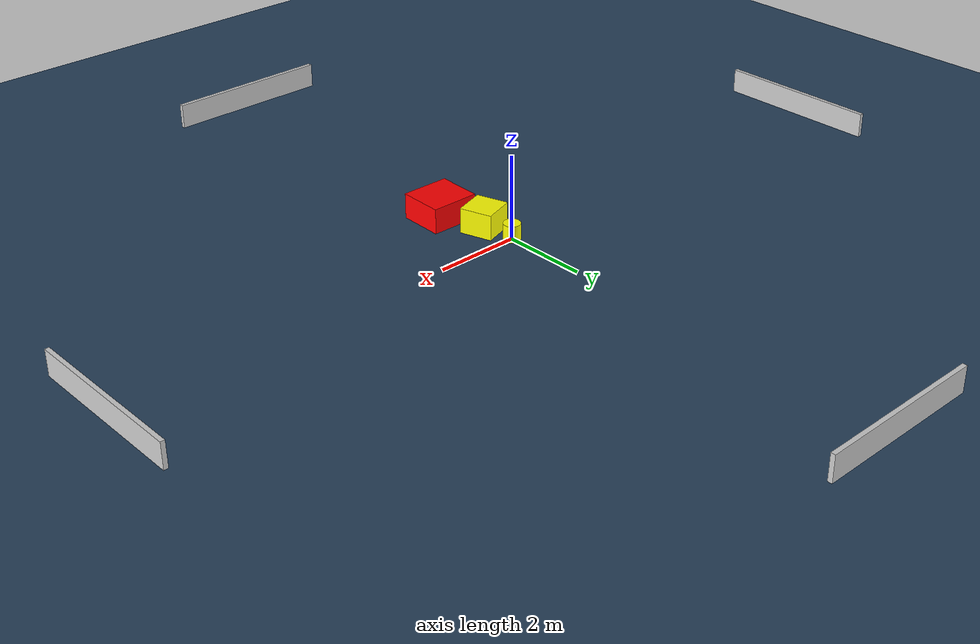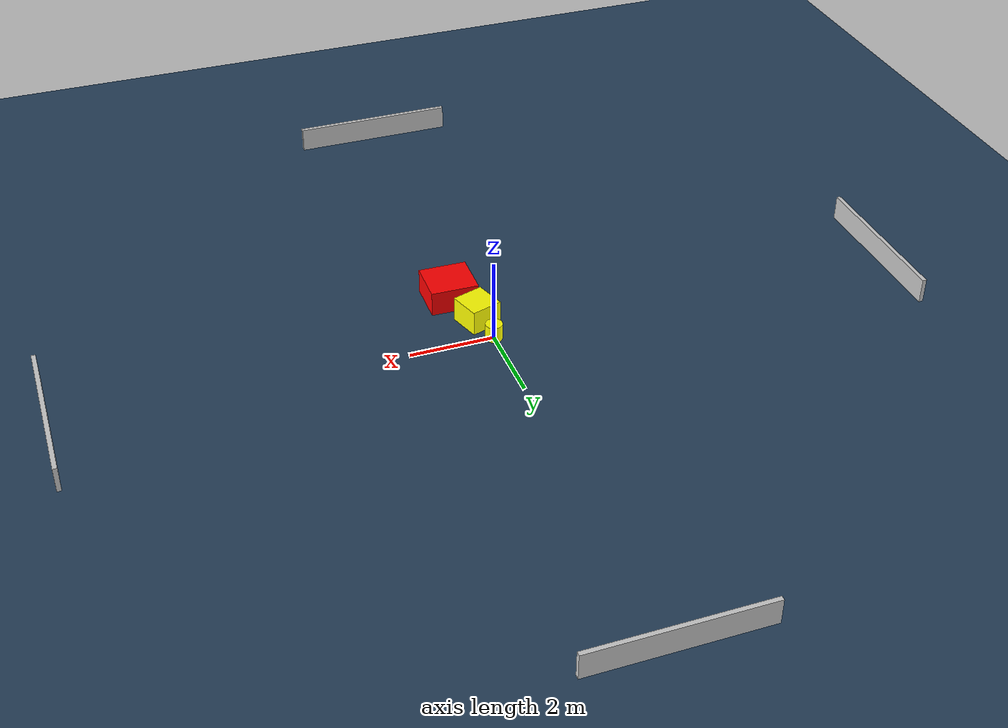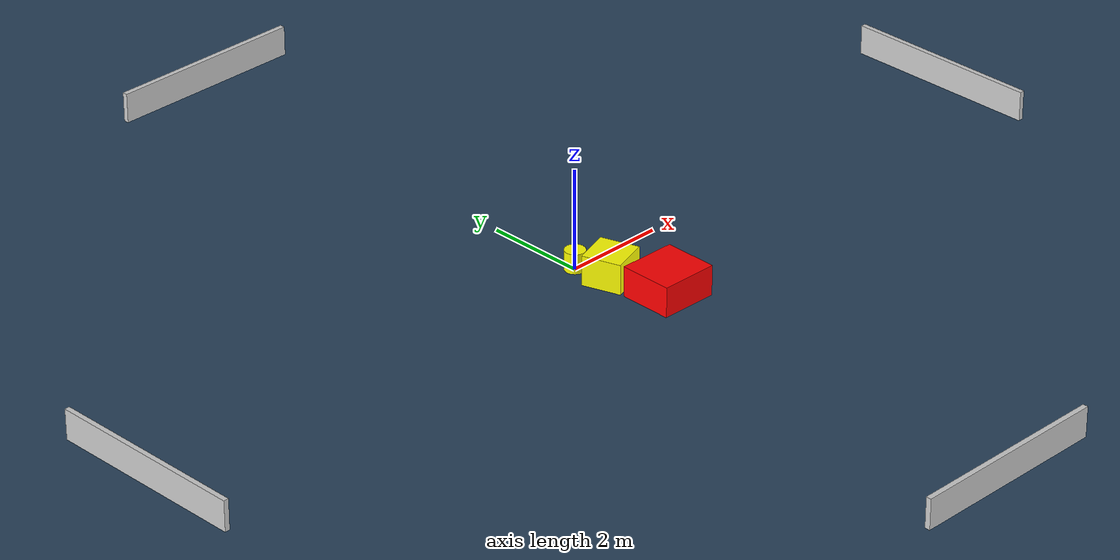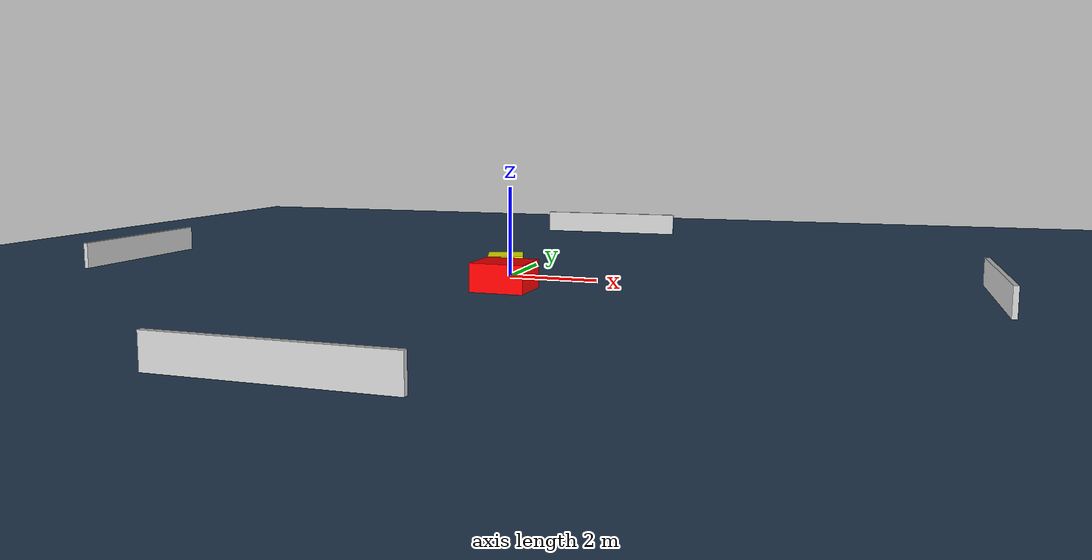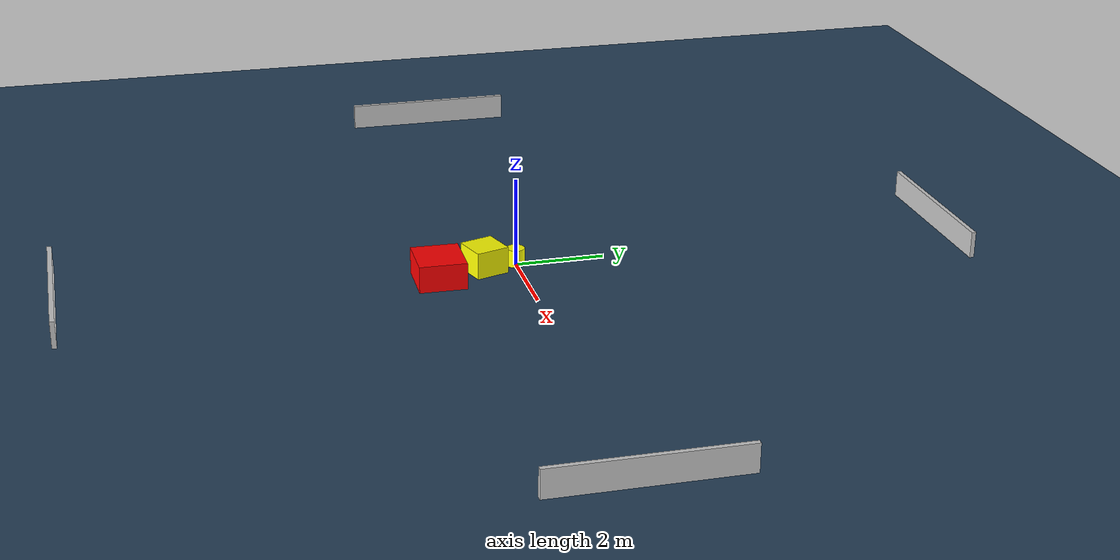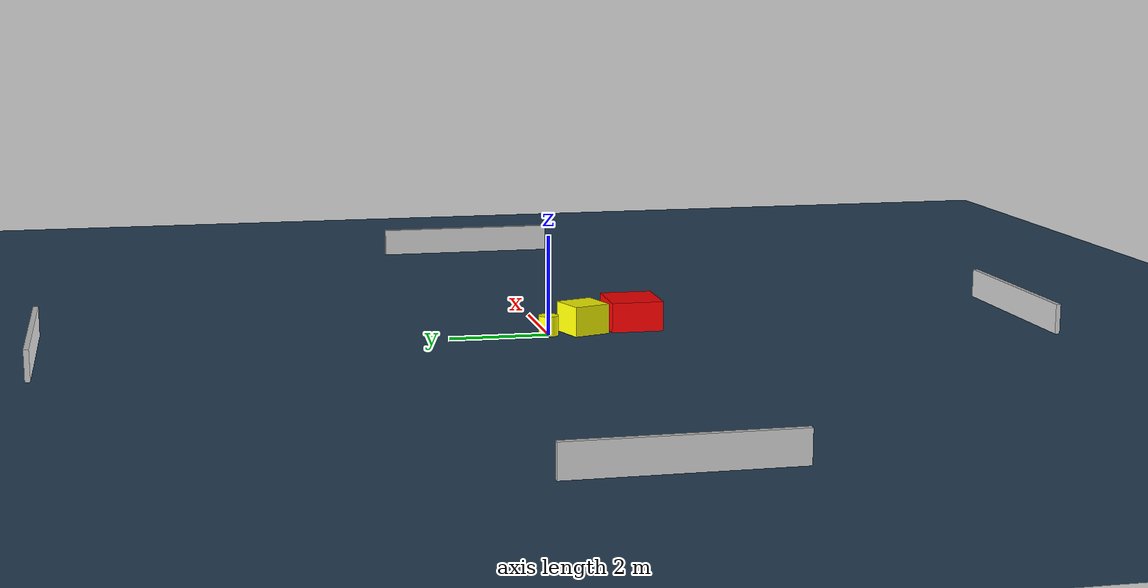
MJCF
<?xml version="1.0" ?>
<mujoco model="generated_environment">
  <option timestep="0.01" integrator="RK4" cone="elliptic"/>
  <default>
    <geom density="1"/>
  </default>
  <asset>
    <texture builtin="gradient" height="3072" name="skybox" rgb1="0.3 0.5 0.7" rgb2="0 0 0" type="skybox" width="512"/>
    <texture builtin="checker" height="300" name="groundplane" rgb1="0.2 0.3 0.4" rgb2="0.1 0.2 0.3" type="2d" width="300"/>
    <material name="groundplane" reflectance="0.2" texrepeat="5 5" texture="groundplane"/>
  </asset>
  <worldbody>
    <light dir="0 0 -1" directional="true" pos="0 0 1.5"/>
    <geom condim="3" friction="0.5 0.005 0.001" material="groundplane" name="floor" pos="0 0 0" size="0 0 0.05" type="plane"/>
    <body name="walls">
      <geom name="wall_1" condim="4" pos="-10.0 0.0 0.3" rgba="0.800000011920929 0.800000011920929 0.800000011920929 1.0" size="0.05 2.0 0.3" type="box"/>
      <geom name="wall_2" condim="4" pos="10.0 0.0 0.3" rgba="0.800000011920929 0.800000011920929 0.800000011920929 1.0" size="0.05 2.0 0.3" type="box"/>
      <geom name="wall_3" condim="4" pos="0.0 -10.0 0.3" rgba="0.800000011920929 0.800000011920929 0.800000011920929 1.0" size="2.0 0.05 0.3" type="box"/>
      <geom name="wall_4" condim="4" pos="0.0 10.0 0.3" rgba="0.800000011920929 0.800000011920929 0.800000011920929 1.0" size="2.0 0.05 0.3" type="box"/>
    </body>
    <body name="robot">
      <joint name="joint_x" type="slide" pos="0 0 0" axis="1 0 0"/>
      <joint name="joint_y" type="slide" pos="0 0 0" axis="0 1 0"/>
      <geom name="robot" type="cylinder" pos="0.0 0.0 0.2" size="0.2 0.2 0.0" mass="5.0" friction="1.0 0.005 0.0001" condim="4" rgba="1.0 1.0 0.0 1.0"/>
    </body>
    <body name="obstacle_1_movable">
      <geom name="obstacle_1_movable" condim="4" pos="0.14877539863551834 -0.7397230160950646 0.3" euler="0 0 287.8409853999909" friction="0.0 0.005 0.001" rgba="1.0 1.0 0.0 1.0" size="0.383369276381936 0.37876270154170355 0.3" type="box" mass="0.1"/>
      <joint type="free"/>
    </body>
    <body name="obstacle_2_static">
      <geom name="obstacle_2_static" condim="4" pos="0.4850198127068273 -1.8271009654341945 0.3" euler="0 0 359.05610828716044" friction="0.0 0.005 0.001" rgba="1.0 0.0 0.0 1.0" size="0.5719377105522436 0.5276074542240097 0.3" type="box"/>
    </body>
  </worldbody>
  <actuator>
    <motor name="actuator_x" joint="joint_x" gear="1" ctrlrange="-1 1"/>
    <motor name="actuator_y" joint="joint_y" gear="1" ctrlrange="-1 1"/>
  </actuator>
</mujoco>
